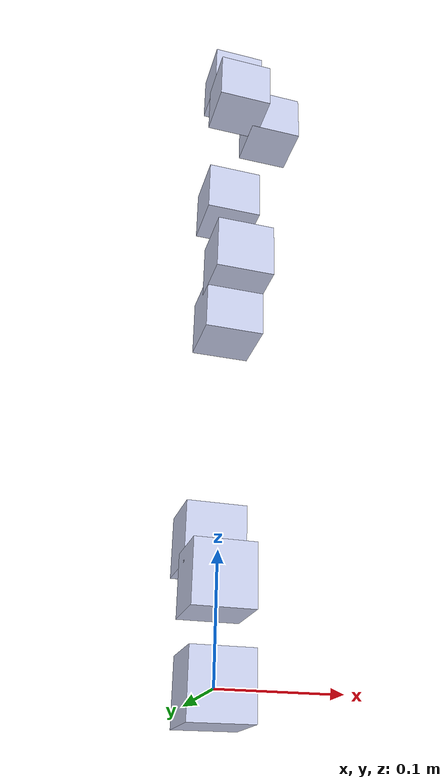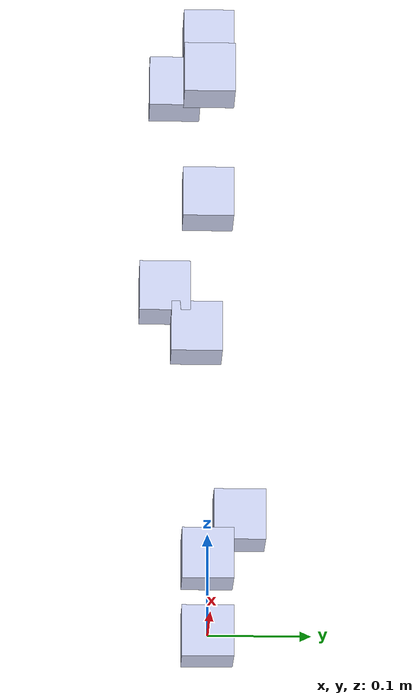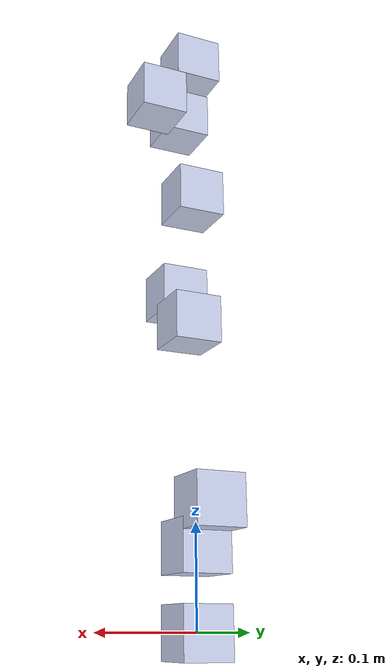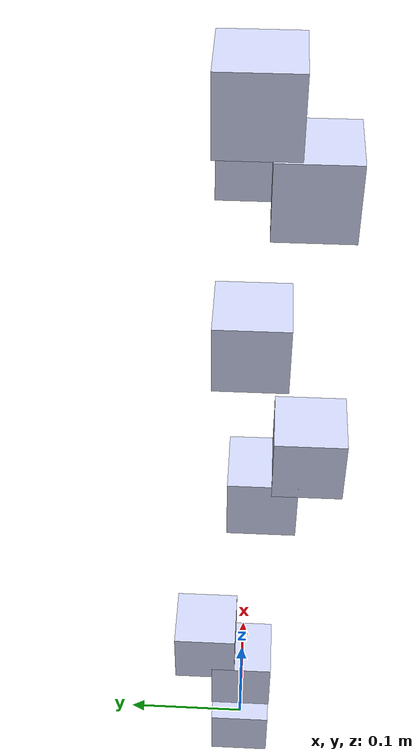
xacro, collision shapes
<?xml version="1.0"?>
<robot xmlns:xacro="http://www.ros.org/wiki/xacro" name="arm_bot">
    <xacro:arg name="initial_positions_file" default="initial_positions.yaml" />

    <!-- Import arm_bot urdf file -->
    <xacro:include filename="$(find arm_bot)/urdf/arm.xacro" />

    <!-- Import control_xacro -->
    <xacro:include filename="arm_bot.ros2_control.xacro" />

    <xacro:arm_bot_ros2_control name="FakeSystem" initial_positions_file="$(arg initial_positions_file)"/>

</robot>

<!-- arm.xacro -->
<robot xmlns:xacro="http://ros.org/wiki/xacro" name="arm_bot">

  <!-- Anchor the robot to the world so the base doesn't drift under gravity. -->
  <link name="world"/>
  <joint name="world_to_base" type="fixed">
    <parent link="world"/>
    <child  link="base_link"/>
    <origin xyz="0 0 0" rpy="0 0 0"/>
  </joint>

  <link
    name="base_link">
    <inertial>
      <origin
        xyz="1.81808743712764E-07 3.51671016444836E-06 0.0190202699281045"
        rpy="0 0 0" />
      <mass
        value="0.600113797127881" />
      <inertia
        ixx="0.00142272100149643"
        ixy="-1.85277151322222E-08"
        ixz="2.64056318979838E-09"
        iyy="0.00138396704972103"
        iyz="-9.69105232522063E-08"
        izz="0.00267252083564978" />
    </inertial>
    <visual>
      <origin
        xyz="0 0 0"
        rpy="0 0 0" />
      <geometry>
        <mesh
          filename="package://arm_bot/meshes/base_link.STL" />
      </geometry>
      <material
        name="">
        <color
          rgba="0.792156862745098 0.819607843137255 0.933333333333333 1" />
      </material>
    </visual>
    <collision>
      <origin
        xyz="0 0 0"
        rpy="0 0 0" />
      <geometry>
        <box size="0.05 0.05 0.05" />
      </geometry>
    </collision>
  </link>
  <link
    name="Link_1">
    <inertial>
      <origin
        xyz="-2.2477756428399E-05 -0.00342277751368852 0.0347396855378943"
        rpy="0 0 0" />
      <mass
        value="0.178697154740353" />
      <inertia
        ixx="7.96309050443453E-05"
        ixy="-2.54439484952743E-08"
        ixz="2.98282673318339E-08"
        iyy="9.4736554814759E-05"
        iyz="-6.46793818611851E-06"
        izz="7.81568176721272E-05" />
    </inertial>
    <visual>
      <origin
        xyz="0 0 0"
        rpy="0 0 0" />
      <geometry>
        <mesh
          filename="package://arm_bot/meshes/Link_1.STL" />
      </geometry>
      <material
        name="">
        <color
          rgba="0.792156862745098 0.819607843137255 0.933333333333333 1" />
      </material>
    </visual>
    <collision>
      <origin
        xyz="0 0 0"
        rpy="0 0 0" />
      <geometry>
        <box size="0.05 0.05 0.05" />
      </geometry>
    </collision>
  </link>
  <joint
    name="joint_1"
    type="continuous">
    <origin
      xyz="0 0 0.0765"
      rpy="0 0 0" />
    <parent
      link="base_link" />
    <child
      link="Link_1" />
    <axis
      xyz="0 0 1" />
    <dynamics damping="0.5" friction="0.1"/>
  </joint>
  <link
    name="Link_2">
    <inertial>
      <origin
        xyz="-2.7914E-05 -0.11632 -0.022885"
        rpy="0 0 0" />
      <mass
        value="0.34816" />
      <inertia
        ixx="0.00047703"
        ixy="2.1797E-08"
        ixz="1.9052E-08"
        iyy="0.00014455"
        iyz="-3.8778E-06"
        izz="0.0005258" />
    </inertial>
    <visual>
      <origin
        xyz="0 0 0"
        rpy="0 0 0" />
      <geometry>
        <mesh
          filename="package://arm_bot/meshes/Link_2.STL" />
      </geometry>
      <material
        name="">
        <color
          rgba="0.79216 0.81961 0.93333 1" />
      </material>
    </visual>
    <collision>
      <origin
        xyz="0 0 0"
        rpy="0 0 0" />
      <geometry>
        <box size="0.05 0.05 0.05" />
      </geometry>
    </collision>
  </link>
  <joint
    name="joint_2"
    type="revolute">
    <origin
      xyz="0 0.03075 0.038650000000001"
      rpy="-1.5707963267949 0 0" />
    <parent
      link="Link_1" />
    <child
      link="Link_2" />
    <axis
      xyz="0 0 -1" />
    <limit
      lower="-1.6"
      upper="1.6"
      effort="80"
      velocity="3" />
      <dynamics damping="0.5" friction="0.1"/>
  </joint>
  <link
    name="Link_3">
    <inertial>
      <origin
        xyz="-2.31620045713227E-05 0.00291620182584881 0.0367793083249756"
        rpy="0 0 0" />
      <mass
        value="0.179708765579509" />
      <inertia
        ixx="8.11986589249463E-05"
        ixy="3.01909386152205E-08"
        ixz="1.16493656190123E-08"
        iyy="9.6792174631344E-05"
        iyz="6.76085661994497E-06"
        izz="7.86981834616822E-05" />
    </inertial>
    <visual>
      <origin
        xyz="0 0 0"
        rpy="0 0 0" />
      <geometry>
        <mesh
          filename="package://arm_bot/meshes/Link_3.STL" />
      </geometry>
      <material
        name="">
        <color
          rgba="0.792156862745098 0.819607843137255 0.933333333333333 1" />
      </material>
    </visual>
    <collision>
      <origin
        xyz="0 0 0"
        rpy="0 0 0" />
      <geometry>
        <box size="0.05 0.05 0.05" />
      </geometry>
    </collision>
  </link>
  <joint
    name="joint_3"
    type="continuous">
    <origin
      xyz="0 -0.18905 -0.041900000000001"
      rpy="1.5707963267949 0 0" />
    <parent
      link="Link_2" />
    <child
      link="Link_3" />
    <axis
      xyz="0 0 -1" />
    <dynamics damping="0.5" friction="0.1"/>
  </joint>
  <link
    name="Link_4">
    <inertial>
      <origin
        xyz="2.2413E-06 0.059721 -0.0292"
        rpy="0 0 0" />
      <mass
        value="0.21177" />
      <inertia
        ixx="0.00011653"
        ixy="-4.5485E-09"
        ixz="-9.593E-08"
        iyy="9.6346E-05"
        iyz="4.4966E-06"
        izz="0.00013271" />
    </inertial>
    <visual>
      <origin
        xyz="0 0 0"
        rpy="0 0 0" />
      <geometry>
        <mesh
          filename="package://arm_bot/meshes/Link_4.STL" />
      </geometry>
      <material
        name="">
        <color
          rgba="0.79216 0.81961 0.93333 1" />
      </material>
    </visual>
    <collision>
      <origin
        xyz="0 0 0"
        rpy="0 0 0" />
      <geometry>
        <box size="0.05 0.05 0.05" />
      </geometry>
    </collision>
  </link>
  <joint
    name="joint_4"
    type="revolute">
    <origin
      xyz="0 -0.031249999999999 0.040949999999996"
      rpy="1.5707963267949 0 0" />
    <parent
      link="Link_3" />
    <child
      link="Link_4" />
    <axis
      xyz="0 0 -1" />
    <limit
      lower="-1.6"
      upper="1.6"
      effort="80"
      velocity="3" />
      <dynamics damping="0.5" friction="0.1"/>
  </joint>
  <link
    name="Link_5">
    <inertial>
      <origin
        xyz="-0.00177236610278825 2.15573217141399E-06 0.0417626638216542"
        rpy="0 0 0" />
      <mass
        value="0.159080450324479" />
      <inertia
        ixx="5.68633221125463E-05"
        ixy="-7.50367675827251E-10"
        ixz="-5.82928470334021E-07"
        iyy="7.16891900105115E-05"
        iyz="-2.69254178738848E-08"
        izz="6.77400749459846E-05" />
    </inertial>
    <visual>
      <origin
        xyz="0 0 0"
        rpy="0 0 0" />
      <geometry>
        <mesh
          filename="package://arm_bot/meshes/Link_5.STL" />
      </geometry>
      <material
        name="">
        <color
          rgba="0.792156862745098 0.819607843137255 0.933333333333333 1" />
      </material>
    </visual>
    <collision>
      <origin
        xyz="0 0 0"
        rpy="0 0 0" />
      <geometry>
        <box size="0.05 0.05 0.05" />
      </geometry>
    </collision>
  </link>
  <joint
    name="joint_5"
    type="continuous">
    <origin
      xyz="0 0.0975 -0.0424"
      rpy="-1.5707963267949 0 0" />
    <parent
      link="Link_4" />
    <child
      link="Link_5" />
    <axis
      xyz="0 0 -1" />
    <dynamics damping="0.5" friction="0.1"/>
  </joint>
  <link
    name="Link_6">
    <inertial>
      <origin
        xyz="0.00084798203862803 -4.04852802771138E-05 -0.0420607967702521"
        rpy="0 0 0" />
      <mass
        value="0.11559940108317" />
      <inertia
        ixx="4.28941921288095E-05"
        ixy="-6.47460774931633E-08"
        ixz="-3.71302836909703E-08"
        iyy="3.30046765184132E-05"
        iyz="-1.41408977961401E-07"
        izz="3.33181232072131E-05" />
    </inertial>
    <visual>
      <origin
        xyz="0 0 0"
        rpy="0 0 0" />
      <geometry>
        <mesh
          filename="package://arm_bot/meshes/Link_6.STL" />
      </geometry>
      <material
        name="">
        <color
          rgba="0.792156862745098 0.819607843137255 0.933333333333333 1" />
      </material>
    </visual>
    <collision>
      <origin
        xyz="0 0 0"
        rpy="0 0 0" />
      <geometry>
        <box size="0.05 0.05 0.05" />
      </geometry>
    </collision>
  </link>
  <joint
    name="joint_6"
    type="revolute">
    <origin
      xyz="0.042 0 0.11462"
      rpy="-1.5708 0 -1.5708" />
    <parent
      link="Link_5" />
    <child
      link="Link_6" />
    <axis
      xyz="0 0 -1" />
    <limit
      lower="-0.48"
      upper="0.26"
      effort="80"
      velocity="3" />
      <dynamics damping="0.5" friction="0.1"/>
  </joint>
  <link
    name="Link_7">
    <inertial>
      <origin
        xyz="0.0138328668671853 -0.000452275553507228 -0.0271406935403273"
        rpy="0 0 0" />
      <mass
        value="0.0203505291849234" />
      <inertia
        ixx="1.2411940280184E-06"
        ixy="1.47112814748753E-07"
        ixz="-1.95103148451751E-07"
        iyy="5.76028029392945E-06"
        iyz="6.49490745197324E-09"
        izz="6.74522841257578E-06" />
    </inertial>
    <visual>
      <origin
        xyz="0 0 0"
        rpy="0 0 0" />
      <geometry>
        <mesh
          filename="package://arm_bot/meshes/Link_7.STL" />
      </geometry>
      <material
        name="">
        <color
          rgba="0.792156862745098 0.819607843137255 0.933333333333333 1" />
      </material>
    </visual>
    <collision>
      <origin
        xyz="0 0 0"
        rpy="0 0 0" />
      <geometry>
        <box size="0.05 0.05 0.05" />
      </geometry>
    </collision>
  </link>
  <joint
    name="joint_7"
    type="revolute">
    <origin
      xyz="0.0335 -0.00015003 -0.042"
      rpy="-1.5708 0 -1.5708" />
    <parent
      link="Link_6" />
    <child
      link="Link_7" />
    <axis
      xyz="-0.0044784 0 -0.99999" />
    <limit
      lower="-1.6"
      upper="1.6"
      effort="80"
      velocity="3" />
      <dynamics damping="0.5" friction="0.1"/>
  </joint>
  <link
    name="ee">
    <inertial>
      <origin
        xyz="-0.00297909515214045 -9.67727459468687E-05 -1.33416526672796E-05"
        rpy="0 0 0" />
      <mass
        value="0.0119347262769104" />
      <inertia
        ixx="3.96584433984964E-06"
        ixy="5.7967880279897E-08"
        ixz="9.43233835191533E-09"
        iyy="2.18322486775653E-06"
        iyz="2.59604774289605E-10"
        izz="1.85971321951525E-06" />
    </inertial>
    <visual>
      <origin
        xyz="0 0 0"
        rpy="0 0 0" />
      <geometry>
        <mesh
          filename="package://arm_bot/meshes/ee.STL" />
      </geometry>
      <material
        name="">
        <color
          rgba="0.792156862745098 0.819607843137255 0.933333333333333 1" />
      </material>
    </visual>
    <collision>
      <origin
        xyz="0 0 0"
        rpy="0 0 0" />
      <geometry>
        <box size="0.05 0.05 0.05" />
      </geometry>
    </collision>
  </link>
  <joint
    name="fix"
    type="fixed">
    <origin
      xyz="0.049823 -0.0016233 -0.033723"
      rpy="3.1416 0 0" />
    <parent
      link="Link_7" />
    <child
      link="ee" />
    <axis
      xyz="0 0 0" />
  </joint>
</robot>
